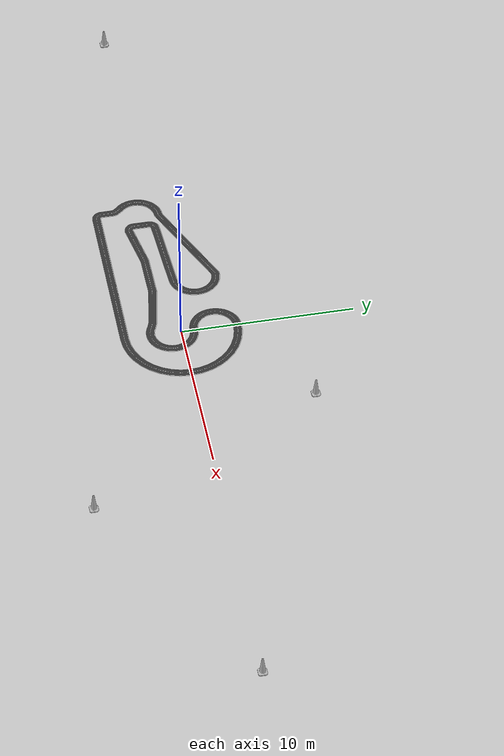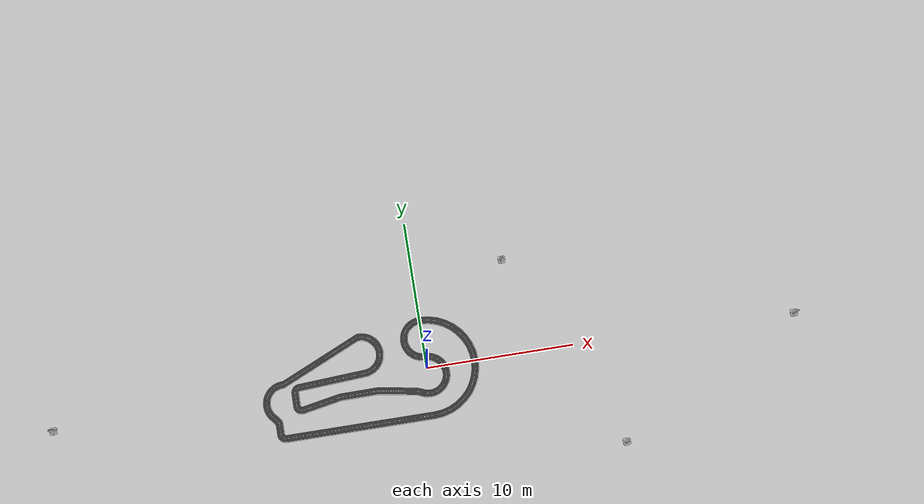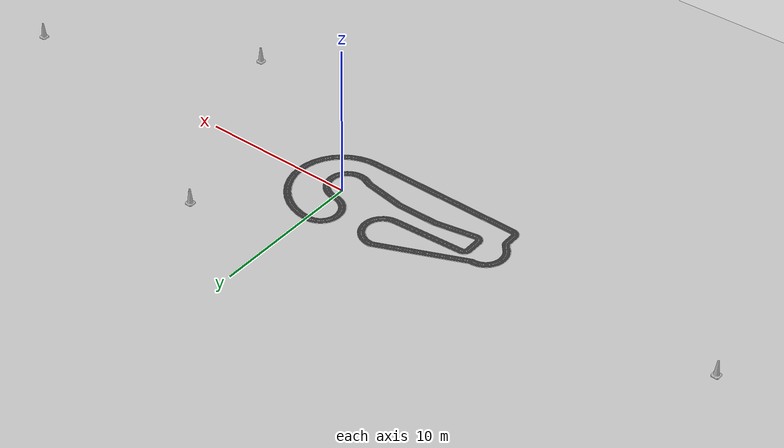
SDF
<sdf version="1.6">
 <world name="default">
  <scene>
   <sky><clouds><speed>12</speed></clouds></sky>
   <ambient>1.0 1.0 1.0 1.0</ambient>
   <shadows>false</shadows>
  </scene>
  <include><uri>model://ground_plane</uri></include>
  <include><uri>model://sun</uri></include>
  <include>
   <name>autcup_race_white_mark</name>
   <uri>model://urdf/models/autcup_race_white_mark</uri>
   <pose>0 0 0.001 0 0 0</pose>
  </include>
  <include>
   <static>true</static>
   <name>cone_1</name>
   <uri>model://construction_cone</uri>
   <pose>25.2 -0.2 0 0 0 0</pose>
  </include>
  <include>
   <static>true</static>
   <name>cone_2</name>
   <uri>model://construction_cone</uri>
   <pose>6.18 6.54 0 0 0 0</pose>
  </include>
  <include>
   <static>true</static>
   <name>cone_3</name>
   <uri>model://construction_cone</uri>
   <pose>-25.4 -0.3 0 0 0 0</pose>
  </include>
  <include>
   <static>true</static>
   <name>cone_4</name>
   <uri>model://construction_cone</uri>
   <pose>12.4 -7.0 0 0 0 0</pose>
  </include>
 </world>
</sdf>

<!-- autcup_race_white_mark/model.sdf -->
<sdf version="1.6">
  <model name="autcup_race_white_mark">
    <static>true</static>

    <link name="link">
      <collision name="collision">
        <geometry>
          <mesh>
            <uri>model://autocone_description/urdf/models/autcup_race_white_mark/autcup_race_white_mark.dae</uri>
          </mesh>
        </geometry>
        <surface>
            <contact>
              <collide_without_contact>true</collide_without_contact>
            </contact>
          </surface>

      </collision>

      <visual name="visual">
        <cast_shadows>true</cast_shadows>
        <geometry>
          <mesh>
            <uri>model://autocone_description/urdf/models/autcup_race_white_mark/autcup_race_white_mark.dae</uri>
          </mesh>
        </geometry>
      </visual>
    </link>
  </model>
</sdf>

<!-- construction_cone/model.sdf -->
<sdf version="1.5">
  <model name="Construction Cone">
    <link name="link">
      <collision name="collision">
        <geometry>
          <mesh>
            <scale>10 10 10</scale>
            <uri>file://isr-testbed/construction_cone/meshes/construction_cone.dae</uri>
          </mesh>
        </geometry>
      </collision>
      <visual name="visual">
        <geometry>
          <mesh>
            <scale>10 10 10</scale>
            <uri>file://isr-testbed/construction_cone/meshes/construction_cone.dae</uri>
          </mesh>
        </geometry>
      </visual>
    </link>
  </model>
</sdf>
